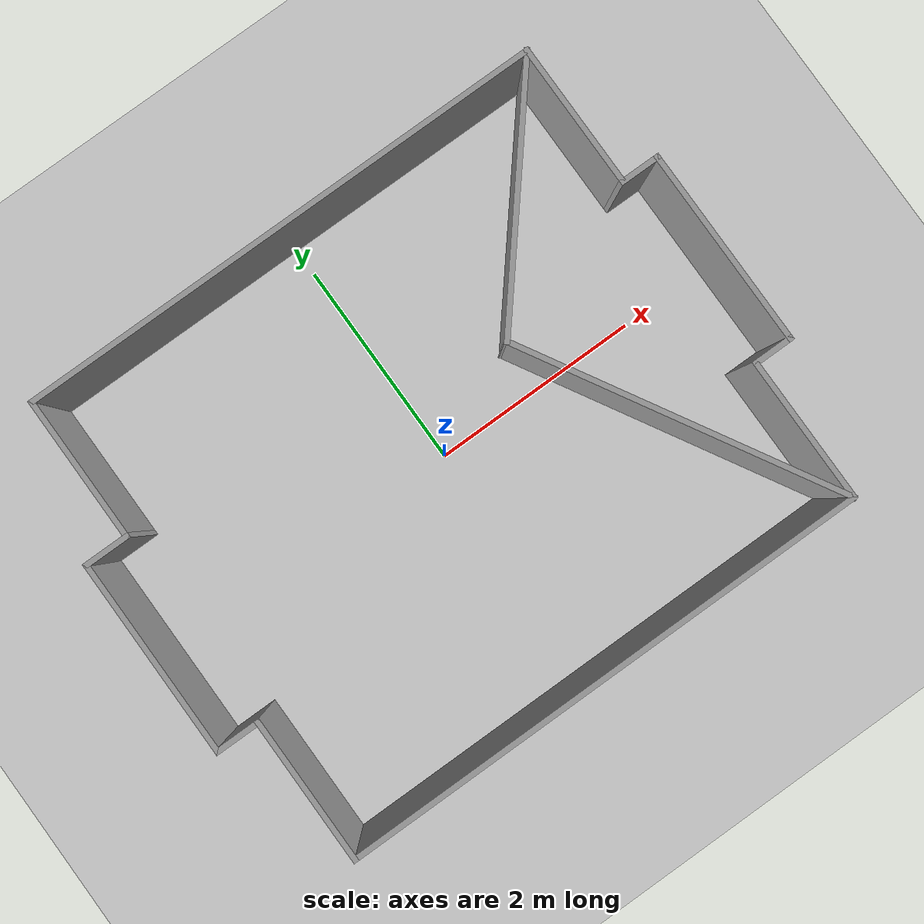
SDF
<sdf version="1.6">
 <world name="default">
  <light name="sun" type="directional">
   <pose>0 0 10 0 -0 0</pose>
   <diffuse>0.8 0.8 0.8 1</diffuse>
   <specular>0.2 0.2 0.2 1</specular>
   <attenuation>
    <range>1000</range>
    <constant>0.9</constant>
    <linear>0.01</linear>
    <quadratic>0.001</quadratic>
   </attenuation>
   <direction>-0.5 0.1 -0.9</direction>
  </light>
  <model name="ground_plane">
   <static>1</static>
   <link name="link">
    <collision name="collision">
     <geometry><plane><normal>0 0 1</normal><size>100 100</size></plane></geometry>
     <surface><friction><ode><mu>100</mu><mu2>50</mu2></ode></friction></surface>
    </collision>
    <visual name="visual">
     <cast_shadows>0</cast_shadows>
     <geometry><plane><normal>0 0 1</normal><size>100 100</size></plane></geometry>
     <material>
      <script><uri>file://media/materials/scripts/gazebo.material</uri><name>Gazebo/Grey</name></script>
     </material>
    </visual>
   </link>
  </model>
  <gravity>0 0 -9.8</gravity>
  <magnetic_field>6e-06 2.3e-05 -4.2e-05</magnetic_field>
  <atmosphere type="adiabatic"/>
  <physics name="default_physics" default="0" type="ode">
   <max_step_size>0.001</max_step_size>
   <real_time_factor>1</real_time_factor>
   <real_time_update_rate>1000</real_time_update_rate>
  </physics>
  <scene><ambient>0.4 0.4 0.4 1</ambient><background>0.7 0.7 0.7 1</background><shadows>1</shadows></scene>
  <spherical_coordinates>
   <surface_model>EARTH_WGS84</surface_model>
   <latitude_deg>0</latitude_deg>
   <longitude_deg>0</longitude_deg>
   <elevation>0</elevation>
   <heading_deg>0</heading_deg>
  </spherical_coordinates>
  <model name="rgarena1">
   <pose>-0.038177 0.019271 0 0 -0 0</pose>
   <link name="Wall_10">
    <collision name="Wall_10_Collision">
     <geometry><box><size>1.4 0.05 1</size></box></geometry>
     <pose>0 0 0.5 0 -0 0</pose>
    </collision>
    <visual name="Wall_10_Visual">
     <pose>0 0 0.5 0 -0 0</pose>
     <geometry><box><size>1.4 0.05 1</size></box></geometry>
     <material>
      <script><uri>file://media/materials/scripts/gazebo.material</uri><name>Gazebo/Grey</name></script>
      <ambient>1 1 1 1</ambient>
     </material>
     <meta><layer>0</layer></meta>
    </visual>
    <pose>2.525 1.59943 0 0 -0 1.5708</pose>
   </link>
   <link name="Wall_11">
    <collision name="Wall_11_Collision">
     <geometry><box><size>5.05 0.05 1</size></box></geometry>
     <pose>0 0 0.5 0 -0 0</pose>
    </collision>
    <visual name="Wall_11_Visual">
     <pose>0 0 0.5 0 -0 0</pose>
     <geometry><box><size>5.05 0.05 1</size></box></geometry>
     <material>
      <script><uri>file://media/materials/scripts/gazebo.material</uri><name>Gazebo/Grey</name></script>
      <ambient>1 1 1 1</ambient>
     </material>
     <meta><layer>0</layer></meta>
    </visual>
    <pose>0.025 2.27442 0 0 -0 3.14159</pose>
   </link>
   <link name="Wall_12">
    <collision name="Wall_12_Collision">
     <geometry><box><size>1.4 0.05 1</size></box></geometry>
     <pose>0 0 0.5 0 -0 0</pose>
    </collision>
    <visual name="Wall_12_Visual">
     <pose>0 0 0.5 0 -0 0</pose>
     <geometry><box><size>1.4 0.05 1</size></box></geometry>
     <material>
      <script><uri>file://media/materials/scripts/gazebo.material</uri><name>Gazebo/Grey</name></script>
      <ambient>1 1 1 1</ambient>
     </material>
     <meta><layer>0</layer></meta>
    </visual>
    <pose>-2.475 1.59943 0 0 -0 -1.5708</pose>
   </link>
   <link name="Wall_13">
    <collision name="Wall_13_Collision">
     <geometry><box><size>0.45 0.05 1</size></box></geometry>
     <pose>0 0 0.5 0 -0 0</pose>
    </collision>
    <visual name="Wall_13_Visual">
     <pose>0 0 0.5 0 -0 0</pose>
     <geometry><box><size>0.45 0.05 1</size></box></geometry>
     <material>
      <script><uri>file://media/materials/scripts/gazebo.material</uri><name>Gazebo/Grey</name></script>
      <ambient>1 1 1 1</ambient>
     </material>
     <meta><layer>0</layer></meta>
    </visual>
    <pose>-2.675 0.924425 0 0 -0 3.14159</pose>
   </link>
   <link name="Wall_14">
    <collision name="Wall_14_Collision">
     <geometry><box><size>1.9 0.05 1</size></box></geometry>
     <pose>0 0 0.5 0 -0 0</pose>
    </collision>
    <visual name="Wall_14_Visual">
     <pose>0 0 0.5 0 -0 0</pose>
     <geometry><box><size>1.9 0.05 1</size></box></geometry>
     <material>
      <script><uri>file://media/materials/scripts/gazebo.material</uri><name>Gazebo/Grey</name></script>
      <ambient>1 1 1 1</ambient>
     </material>
     <meta><layer>0</layer></meta>
    </visual>
    <pose>-2.875 -0.000575 0 0 -0 -1.5708</pose>
   </link>
   <link name="Wall_15">
    <collision name="Wall_15_Collision">
     <geometry><box><size>0.45 0.05 1</size></box></geometry>
     <pose>0 0 0.5 0 -0 0</pose>
    </collision>
    <visual name="Wall_15_Visual">
     <pose>0 0 0.5 0 -0 0</pose>
     <geometry><box><size>0.45 0.05 1</size></box></geometry>
     <material>
      <script><uri>file://media/materials/scripts/gazebo.material</uri><name>Gazebo/Grey</name></script>
      <ambient>1 1 1 1</ambient>
     </material>
     <meta><layer>0</layer></meta>
    </visual>
    <pose>-2.675 -0.925575 0 0 -0 0</pose>
   </link>
   <link name="Wall_16">
    <collision name="Wall_16_Collision">
     <geometry><box><size>1.4 0.05 1</size></box></geometry>
     <pose>0 0 0.5 0 -0 0</pose>
    </collision>
    <visual name="Wall_16_Visual">
     <pose>0 0 0.5 0 -0 0</pose>
     <geometry><box><size>1.4 0.05 1</size></box></geometry>
     <material>
      <script><uri>file://media/materials/scripts/gazebo.material</uri><name>Gazebo/Grey</name></script>
      <ambient>1 1 1 1</ambient>
     </material>
     <meta><layer>0</layer></meta>
    </visual>
    <pose>-2.475 -1.60058 0 0 -0 -1.5708</pose>
   </link>
   <link name="Wall_18">
    <collision name="Wall_18_Collision">
     <geometry><box><size>2.47527 0.05 1</size></box></geometry>
     <pose>0 0 0.5 0 -0 0</pose>
    </collision>
    <visual name="Wall_18_Visual">
     <pose>0 0 0.5 0 -0 0</pose>
     <geometry><box><size>2.47527 0.05 1</size></box></geometry>
     <material>
      <script><uri>file://media/materials/scripts/gazebo.material</uri><name>Gazebo/Grey</name></script>
      <ambient>1 1 1 1</ambient>
     </material>
     <meta><layer>0</layer></meta>
    </visual>
    <pose>1.75 1.34193 0 0 -0 -2.26422</pose>
   </link>
   <link name="Wall_19">
    <collision name="Wall_19_Collision">
     <geometry><box><size>3.15028 0.05 1</size></box></geometry>
     <pose>0 0 0.5 0 -0 0</pose>
    </collision>
    <visual name="Wall_19_Visual">
     <pose>0 0 0.5 0 -0 0</pose>
     <geometry><box><size>3.15028 0.05 1</size></box></geometry>
     <material>
      <script><uri>file://media/materials/scripts/gazebo.material</uri><name>Gazebo/Grey</name></script>
      <ambient>1 1 1 1</ambient>
     </material>
     <meta><layer>0</layer></meta>
    </visual>
    <pose>1.75 -0.933075 0 0 -0 -1.04725</pose>
   </link>
   <link name="Wall_3">
    <collision name="Wall_3_Collision">
     <geometry><box><size>5.05 0.05 1</size></box></geometry>
     <pose>0 0 0.5 0 -0 0</pose>
    </collision>
    <visual name="Wall_3_Visual">
     <pose>0 0 0.5 0 -0 0</pose>
     <geometry><box><size>5.05 0.05 1</size></box></geometry>
     <material>
      <script><uri>file://media/materials/scripts/gazebo.material</uri><name>Gazebo/Grey</name></script>
      <ambient>1 1 1 1</ambient>
     </material>
     <meta><layer>0</layer></meta>
    </visual>
    <pose>0.025 -2.27557 0 0 -0 0</pose>
   </link>
   <link name="Wall_5">
    <collision name="Wall_5_Collision">
     <geometry><box><size>1.4 0.05 1</size></box></geometry>
     <pose>0 0 0.5 0 -0 0</pose>
    </collision>
    <visual name="Wall_5_Visual">
     <pose>0 0 0.5 0 -0 0</pose>
     <geometry><box><size>1.4 0.05 1</size></box></geometry>
     <material>
      <script><uri>file://media/materials/scripts/gazebo.material</uri><name>Gazebo/Grey</name></script>
      <ambient>1 1 1 1</ambient>
     </material>
     <meta><layer>0</layer></meta>
    </visual>
    <pose>2.525 -1.60058 0 0 -0 1.5708</pose>
   </link>
   <link name="Wall_6">
    <collision name="Wall_6_Collision">
     <geometry><box><size>0.4 0.05 1</size></box></geometry>
     <pose>0 0 0.5 0 -0 0</pose>
    </collision>
    <visual name="Wall_6_Visual">
     <pose>0 0 0.5 0 -0 0</pose>
     <geometry><box><size>0.4 0.05 1</size></box></geometry>
     <material>
      <script><uri>file://media/materials/scripts/gazebo.material</uri><name>Gazebo/Grey</name></script>
      <ambient>1 1 1 1</ambient>
     </material>
     <meta><layer>0</layer></meta>
    </visual>
    <pose>2.7 -0.925575 0 0 -0 0</pose>
   </link>
   <link name="Wall_7">
    <collision name="Wall_7_Collision">
     <geometry><box><size>1.9 0.05 1</size></box></geometry>
     <pose>0 0 0.5 0 -0 0</pose>
    </collision>
    <visual name="Wall_7_Visual">
     <pose>0 0 0.5 0 -0 0</pose>
     <geometry><box><size>1.9 0.05 1</size></box></geometry>
     <material>
      <script><uri>file://media/materials/scripts/gazebo.material</uri><name>Gazebo/Grey</name></script>
      <ambient>1 1 1 1</ambient>
     </material>
     <meta><layer>0</layer></meta>
    </visual>
    <pose>2.875 -0.000575 0 0 -0 1.5708</pose>
   </link>
   <link name="Wall_8">
    <collision name="Wall_8_Collision">
     <geometry><box><size>0.4 0.05 1</size></box></geometry>
     <pose>0 0 0.5 0 -0 0</pose>
    </collision>
    <visual name="Wall_8_Visual">
     <pose>0 0 0.5 0 -0 0</pose>
     <geometry><box><size>0.4 0.05 1</size></box></geometry>
     <material>
      <script><uri>file://media/materials/scripts/gazebo.material</uri><name>Gazebo/Grey</name></script>
      <ambient>1 1 1 1</ambient>
     </material>
     <meta><layer>0</layer></meta>
    </visual>
    <pose>2.7 0.924425 0 0 -0 3.14159</pose>
   </link>
   <static>1</static>
  </model>
 </world>
</sdf>
